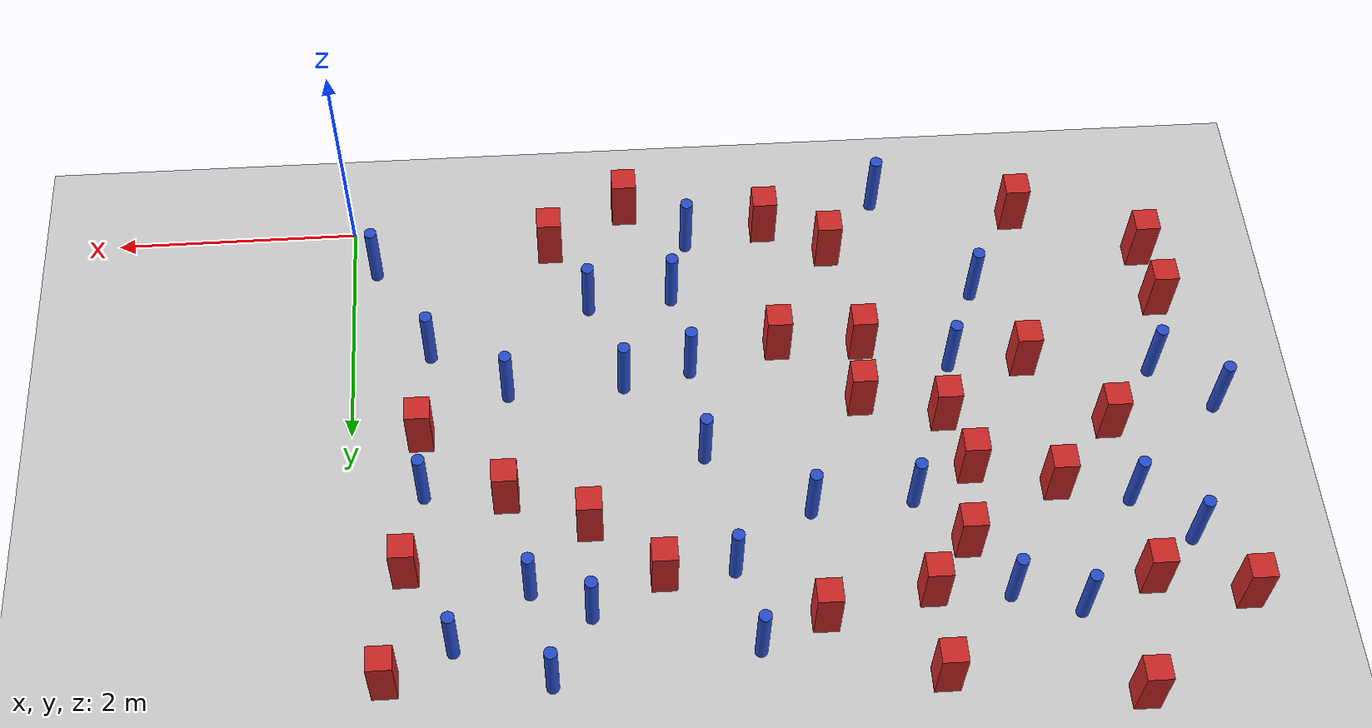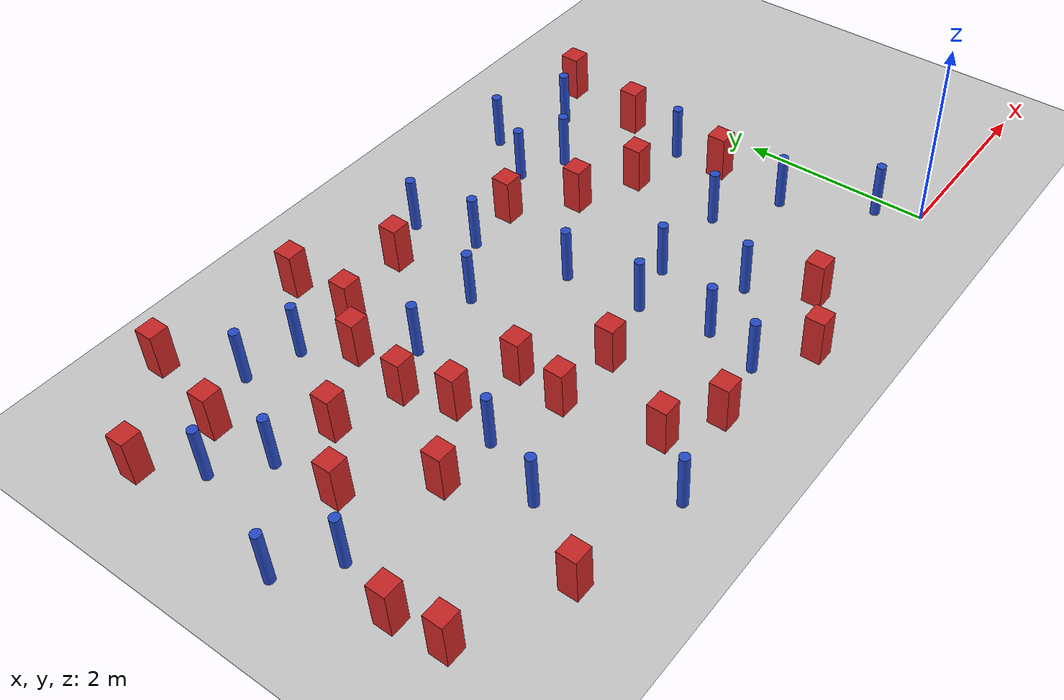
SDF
<sdf version="1.6">
 <world name="default">
  <model name="ground_plane">
   <static>1</static>
   <link name="link">
    <collision name="collision">
     <geometry><plane><normal>0 0 1</normal><size>100 100</size></plane></geometry>
     <surface><friction><ode><mu>100</mu><mu2>50</mu2></ode></friction></surface>
    </collision>
    <visual name="visual">
     <cast_shadows>0</cast_shadows>
     <geometry><plane><normal>0 0 1</normal><size>100 100</size></plane></geometry>
     <material>
      <ambient>1.0 1.0 1.0 1.0</ambient>
      <diffuse>0.8 0.8 0.8 1.0</diffuse>
      <specular>0.01 0.01 0.01 1.000000</specular>
     </material>
    </visual>
   </link>
  </model>
  <model name="NamedLocations">
   <static>true</static>
   <link name="DefaultStart"><pose>8.5 0 0 0 0 3.14</pose></link>
  </model>
  <model name="pole_obstacle3">
   <static>true</static>
   <pose>-6.52083156453 3.32659429473 -9.47619616065e-06 5.49618799738e-07 2.36310414051e-07 -1.55090534805e-07</pose>
   <link name="link">
    <pose>0 0 0.3 0 -0 0</pose>
    <inertial>
     <mass>1</mass>
     <inertia><ixx>0.145833</ixx><ixy>0</ixy><ixz>0</ixz><iyy>0.145833</iyy><iyz>0</iyz><izz>0.125</izz></inertia>
    </inertial>
    <collision name="collision">
     <geometry><cylinder><radius>0.05</radius><length>.6</length></cylinder></geometry>
    </collision>
    <visual name="visual">
     <geometry><cylinder><radius>0.05</radius><length>.6</length></cylinder></geometry>
     <material>
      <script><name>Gazebo/Blue</name><uri>file://media/materials/scripts/gazebo.material</uri></script>
     </material>
    </visual>
   </link>
  </model>
  <model name="pole_obstacle16">
   <static>true</static>
   <pose>-5.04046134124 3.73321766316 -9.47619616065e-06 5.49618799738e-07 2.36310414051e-07 -1.55090534805e-07</pose>
   <link name="link">
    <pose>0 0 0.3 0 -0 0</pose>
    <inertial>
     <mass>1</mass>
     <inertia><ixx>0.145833</ixx><ixy>0</ixy><ixz>0</ixz><iyy>0.145833</iyy><iyz>0</iyz><izz>0.125</izz></inertia>
    </inertial>
    <collision name="collision">
     <geometry><cylinder><radius>0.05</radius><length>.6</length></cylinder></geometry>
    </collision>
    <visual name="visual">
     <geometry><cylinder><radius>0.05</radius><length>.6</length></cylinder></geometry>
     <material>
      <script><name>Gazebo/Blue</name><uri>file://media/materials/scripts/gazebo.material</uri></script>
     </material>
    </visual>
   </link>
  </model>
  <model name="pole_obstacle19">
   <static>true</static>
   <pose>-2.64137848218 0.83292740223 -9.47619616065e-06 5.49618799738e-07 2.36310414075e-07 -1.55090534793e-07</pose>
   <link name="link">
    <pose>0 0 0.3 0 -0 0</pose>
    <inertial>
     <mass>1</mass>
     <inertia><ixx>0.145833</ixx><ixy>0</ixy><ixz>0</ixz><iyy>0.145833</iyy><iyz>0</iyz><izz>0.125</izz></inertia>
    </inertial>
    <collision name="collision">
     <geometry><cylinder><radius>0.05</radius><length>.6</length></cylinder></geometry>
    </collision>
    <visual name="visual">
     <geometry><cylinder><radius>0.05</radius><length>.6</length></cylinder></geometry>
     <material>
      <script><name>Gazebo/Blue</name><uri>file://media/materials/scripts/gazebo.material</uri></script>
     </material>
    </visual>
   </link>
  </model>
  <model name="pole_obstacle27">
   <static>true</static>
   <pose>-4.85621275149 1.62470002069 -9.47619616065e-06 5.49618799738e-07 2.36310414071e-07 -1.55090534796e-07</pose>
   <link name="link">
    <pose>0 0 0.3 0 -0 0</pose>
    <inertial>
     <mass>1</mass>
     <inertia><ixx>0.145833</ixx><ixy>0</ixy><ixz>0</ixz><iyy>0.145833</iyy><iyz>0</iyz><izz>0.125</izz></inertia>
    </inertial>
    <collision name="collision">
     <geometry><cylinder><radius>0.05</radius><length>.6</length></cylinder></geometry>
    </collision>
    <visual name="visual">
     <geometry><cylinder><radius>0.05</radius><length>.6</length></cylinder></geometry>
     <material>
      <script><name>Gazebo/Blue</name><uri>file://media/materials/scripts/gazebo.material</uri></script>
     </material>
    </visual>
   </link>
  </model>
  <model name="square_post_obstacle33">
   <static>true</static>
   <pose>-4.44560535248 4.38843733939 -6.11067671241e-07 -5.50515727128e-06 -8.79689657224e-07 2.37013304536e-05</pose>
   <link name="link">
    <pose>0 0 0.25 0 -0 0</pose>
    <inertial>
     <mass>100</mass>
     <inertia>
      <ixx>0.166667</ixx>
      <ixy>0</ixy>
      <ixz>0</ixz>
      <iyy>0.166667</iyy>
      <iyz>0</iyz>
      <izz>0.166667</izz>
     </inertia>
    </inertial>
    <collision name="collision"><geometry><box><size>.2 .2 .5</size></box></geometry></collision>
    <visual name="visual">
     <geometry><box><size>.2 .2 .5</size></box></geometry>
     <material>
      <script><name>Gazebo/Red</name><uri>file://media/materials/scripts/gazebo.material</uri></script>
     </material>
    </visual>
   </link>
  </model>
  <model name="square_post_obstacle37">
   <static>true</static>
   <pose>-5.53269574983 2.81317121774 -6.11067671241e-07 -5.50515727128e-06 -8.79689657224e-07 2.37013304536e-05</pose>
   <link name="link">
    <pose>0 0 0.25 0 -0 0</pose>
    <inertial>
     <mass>100</mass>
     <inertia>
      <ixx>0.166667</ixx>
      <ixy>0</ixy>
      <ixz>0</ixz>
      <iyy>0.166667</iyy>
      <iyz>0</iyz>
      <izz>0.166667</izz>
     </inertia>
    </inertial>
    <collision name="collision"><geometry><box><size>.2 .2 .5</size></box></geometry></collision>
    <visual name="visual">
     <geometry><box><size>.2 .2 .5</size></box></geometry>
     <material>
      <script><name>Gazebo/Red</name><uri>file://media/materials/scripts/gazebo.material</uri></script>
     </material>
    </visual>
   </link>
  </model>
  <model name="pole_obstacle42">
   <static>true</static>
   <pose>-2.20080716292 1.67959517001 -9.47619616065e-06 5.49618799737e-07 2.36310414072e-07 -1.55090534793e-07</pose>
   <link name="link">
    <pose>0 0 0.3 0 -0 0</pose>
    <inertial>
     <mass>1</mass>
     <inertia><ixx>0.145833</ixx><ixy>0</ixy><ixz>0</ixz><iyy>0.145833</iyy><iyz>0</iyz><izz>0.125</izz></inertia>
    </inertial>
    <collision name="collision">
     <geometry><cylinder><radius>0.05</radius><length>.6</length></cylinder></geometry>
    </collision>
    <visual name="visual">
     <geometry><cylinder><radius>0.05</radius><length>.6</length></cylinder></geometry>
     <material>
      <script><name>Gazebo/Blue</name><uri>file://media/materials/scripts/gazebo.material</uri></script>
     </material>
    </visual>
   </link>
  </model>
  <model name="square_post_obstacle43">
   <static>true</static>
   <pose>-3.97600277825 0.444038101958 -6.11067671241e-07 -5.50515727128e-06 -8.79689657224e-07 2.37013304536e-05</pose>
   <link name="link">
    <pose>0 0 0.25 0 -0 0</pose>
    <inertial>
     <mass>100</mass>
     <inertia>
      <ixx>0.166667</ixx>
      <ixy>0</ixy>
      <ixz>0</ixz>
      <iyy>0.166667</iyy>
      <iyz>0</iyz>
      <izz>0.166667</izz>
     </inertia>
    </inertial>
    <collision name="collision"><geometry><box><size>.2 .2 .5</size></box></geometry></collision>
    <visual name="visual">
     <geometry><box><size>.2 .2 .5</size></box></geometry>
     <material>
      <script><name>Gazebo/Red</name><uri>file://media/materials/scripts/gazebo.material</uri></script>
     </material>
    </visual>
   </link>
  </model>
  <model name="square_post_obstacle45">
   <static>true</static>
   <pose>-6.65425649098 1.1047948728 -6.11067671241e-07 -5.50515727128e-06 -8.79689657224e-07 2.37013304536e-05</pose>
   <link name="link">
    <pose>0 0 0.25 0 -0 0</pose>
    <inertial>
     <mass>100</mass>
     <inertia>
      <ixx>0.166667</ixx>
      <ixy>0</ixy>
      <ixz>0</ixz>
      <iyy>0.166667</iyy>
      <iyz>0</iyz>
      <izz>0.166667</izz>
     </inertia>
    </inertial>
    <collision name="collision"><geometry><box><size>.2 .2 .5</size></box></geometry></collision>
    <visual name="visual">
     <geometry><box><size>.2 .2 .5</size></box></geometry>
     <material>
      <script><name>Gazebo/Red</name><uri>file://media/materials/scripts/gazebo.material</uri></script>
     </material>
    </visual>
   </link>
  </model>
  <model name="square_post_obstacle48">
   <static>true</static>
   <pose>-3.46093252186 0.158511732572 -6.11067671241e-07 -5.50515727128e-06 -8.79689657224e-07 2.37013304536e-05</pose>
   <link name="link">
    <pose>0 0 0.25 0 -0 0</pose>
    <inertial>
     <mass>100</mass>
     <inertia>
      <ixx>0.166667</ixx>
      <ixy>0</ixy>
      <ixz>0</ixz>
      <iyy>0.166667</iyy>
      <iyz>0</iyz>
      <izz>0.166667</izz>
     </inertia>
    </inertial>
    <collision name="collision"><geometry><box><size>.2 .2 .5</size></box></geometry></collision>
    <visual name="visual">
     <geometry><box><size>.2 .2 .5</size></box></geometry>
     <material>
      <script><name>Gazebo/Red</name><uri>file://media/materials/scripts/gazebo.material</uri></script>
     </material>
    </visual>
   </link>
  </model>
  <model name="square_post_obstacle59">
   <static>true</static>
   <pose>-5.59028756532 0.147216902127 -6.11067671241e-07 -5.50515727128e-06 -8.79689657224e-07 2.37013304536e-05</pose>
   <link name="link">
    <pose>0 0 0.25 0 -0 0</pose>
    <inertial>
     <mass>100</mass>
     <inertia>
      <ixx>0.166667</ixx>
      <ixy>0</ixy>
      <ixz>0</ixz>
      <iyy>0.166667</iyy>
      <iyz>0</iyz>
      <izz>0.166667</izz>
     </inertia>
    </inertial>
    <collision name="collision"><geometry><box><size>.2 .2 .5</size></box></geometry></collision>
    <visual name="visual">
     <geometry><box><size>.2 .2 .5</size></box></geometry>
     <material>
      <script><name>Gazebo/Red</name><uri>file://media/materials/scripts/gazebo.material</uri></script>
     </material>
    </visual>
   </link>
  </model>
  <model name="square_post_obstacle60">
   <static>true</static>
   <pose>-1.65208909782 0.275948073349 -6.11067671241e-07 -5.50515727128e-06 -8.79689657224e-07 2.37013304536e-05</pose>
   <link name="link">
    <pose>0 0 0.25 0 -0 0</pose>
    <inertial>
     <mass>100</mass>
     <inertia>
      <ixx>0.166667</ixx>
      <ixy>0</ixy>
      <ixz>0</ixz>
      <iyy>0.166667</iyy>
      <iyz>0</iyz>
      <izz>0.166667</izz>
     </inertia>
    </inertial>
    <collision name="collision"><geometry><box><size>.2 .2 .5</size></box></geometry></collision>
    <visual name="visual">
     <geometry><box><size>.2 .2 .5</size></box></geometry>
     <material>
      <script><name>Gazebo/Red</name><uri>file://media/materials/scripts/gazebo.material</uri></script>
     </material>
    </visual>
   </link>
  </model>
  <model name="pole_obstacle75">
   <static>true</static>
   <pose>-1.52729499665 4.28776093876 -9.47619616065e-06 5.49618799737e-07 2.36310414061e-07 -1.550905348e-07</pose>
   <link name="link">
    <pose>0 0 0.3 0 -0 0</pose>
    <inertial>
     <mass>1</mass>
     <inertia><ixx>0.145833</ixx><ixy>0</ixy><ixz>0</ixz><iyy>0.145833</iyy><iyz>0</iyz><izz>0.125</izz></inertia>
    </inertial>
    <collision name="collision">
     <geometry><cylinder><radius>0.05</radius><length>.6</length></cylinder></geometry>
    </collision>
    <visual name="visual">
     <geometry><cylinder><radius>0.05</radius><length>.6</length></cylinder></geometry>
     <material>
      <script><name>Gazebo/Blue</name><uri>file://media/materials/scripts/gazebo.material</uri></script>
     </material>
    </visual>
   </link>
  </model>
  <model name="pole_obstacle80">
   <static>true</static>
   <pose>-4.42188608262 -0.0715404142047 -9.47619616065e-06 5.49618799737e-07 2.36310414078e-07 -1.55090534791e-07</pose>
   <link name="link">
    <pose>0 0 0.3 0 -0 0</pose>
    <inertial>
     <mass>1</mass>
     <inertia><ixx>0.145833</ixx><ixy>0</ixy><ixz>0</ixz><iyy>0.145833</iyy><iyz>0</iyz><izz>0.125</izz></inertia>
    </inertial>
    <collision name="collision">
     <geometry><cylinder><radius>0.05</radius><length>.6</length></cylinder></geometry>
    </collision>
    <visual name="visual">
     <geometry><cylinder><radius>0.05</radius><length>.6</length></cylinder></geometry>
     <material>
      <script><name>Gazebo/Blue</name><uri>file://media/materials/scripts/gazebo.material</uri></script>
     </material>
    </visual>
   </link>
  </model>
  <model name="pole_obstacle88">
   <static>true</static>
   <pose>-0.190642584882 0.428466157188 -9.47619616065e-06 5.49618799737e-07 2.36310414059e-07 -1.550905348e-07</pose>
   <link name="link">
    <pose>0 0 0.3 0 -0 0</pose>
    <inertial>
     <mass>1</mass>
     <inertia><ixx>0.145833</ixx><ixy>0</ixy><ixz>0</ixz><iyy>0.145833</iyy><iyz>0</iyz><izz>0.125</izz></inertia>
    </inertial>
    <collision name="collision">
     <geometry><cylinder><radius>0.05</radius><length>.6</length></cylinder></geometry>
    </collision>
    <visual name="visual">
     <geometry><cylinder><radius>0.05</radius><length>.6</length></cylinder></geometry>
     <material>
      <script><name>Gazebo/Blue</name><uri>file://media/materials/scripts/gazebo.material</uri></script>
     </material>
    </visual>
   </link>
  </model>
  <model name="square_post_obstacle87">
   <static>true</static>
   <pose>-1.22347058117 2.68554866725 -6.11067671241e-07 -5.50515727128e-06 -8.79689657224e-07 2.37013304536e-05</pose>
   <link name="link">
    <pose>0 0 0.25 0 -0 0</pose>
    <inertial>
     <mass>100</mass>
     <inertia>
      <ixx>0.166667</ixx>
      <ixy>0</ixy>
      <ixz>0</ixz>
      <iyy>0.166667</iyy>
      <iyz>0</iyz>
      <izz>0.166667</izz>
     </inertia>
    </inertial>
    <collision name="collision"><geometry><box><size>.2 .2 .5</size></box></geometry></collision>
    <visual name="visual">
     <geometry><box><size>.2 .2 .5</size></box></geometry>
     <material>
      <script><name>Gazebo/Red</name><uri>file://media/materials/scripts/gazebo.material</uri></script>
     </material>
    </visual>
   </link>
  </model>
  <model name="pole_obstacle98">
   <static>true</static>
   <pose>-3.59554759134 2.92509727946 -9.47619616065e-06 5.49618799737e-07 2.36310414067e-07 -1.55090534797e-07</pose>
   <link name="link">
    <pose>0 0 0.3 0 -0 0</pose>
    <inertial>
     <mass>1</mass>
     <inertia><ixx>0.145833</ixx><ixy>0</ixy><ixz>0</ixz><iyy>0.145833</iyy><iyz>0</iyz><izz>0.125</izz></inertia>
    </inertial>
    <collision name="collision">
     <geometry><cylinder><radius>0.05</radius><length>.6</length></cylinder></geometry>
    </collision>
    <visual name="visual">
     <geometry><cylinder><radius>0.05</radius><length>.6</length></cylinder></geometry>
     <material>
      <script><name>Gazebo/Blue</name><uri>file://media/materials/scripts/gazebo.material</uri></script>
     </material>
    </visual>
   </link>
  </model>
  <model name="pole_obstacle105">
   <static>true</static>
   <pose>-2.80315883394 2.37814279529 -9.47619616065e-06 5.49618799737e-07 2.36310414051e-07 -1.55090534807e-07</pose>
   <link name="link">
    <pose>0 0 0.3 0 -0 0</pose>
    <inertial>
     <mass>1</mass>
     <inertia><ixx>0.145833</ixx><ixy>0</ixy><ixz>0</ixz><iyy>0.145833</iyy><iyz>0</iyz><izz>0.125</izz></inertia>
    </inertial>
    <collision name="collision">
     <geometry><cylinder><radius>0.05</radius><length>.6</length></cylinder></geometry>
    </collision>
    <visual name="visual">
     <geometry><cylinder><radius>0.05</radius><length>.6</length></cylinder></geometry>
     <material>
      <script><name>Gazebo/Blue</name><uri>file://media/materials/scripts/gazebo.material</uri></script>
     </material>
    </visual>
   </link>
  </model>
  <model name="pole_obstacle106">
   <static>true</static>
   <pose>-2.8002590763 0.276128656648 -9.47619616065e-06 5.49618799738e-07 2.3631041407e-07 -1.55090534796e-07</pose>
   <link name="link">
    <pose>0 0 0.3 0 -0 0</pose>
    <inertial>
     <mass>1</mass>
     <inertia><ixx>0.145833</ixx><ixy>0</ixy><ixz>0</ixz><iyy>0.145833</iyy><iyz>0</iyz><izz>0.125</izz></inertia>
    </inertial>
    <collision name="collision">
     <geometry><cylinder><radius>0.05</radius><length>.6</length></cylinder></geometry>
    </collision>
    <visual name="visual">
     <geometry><cylinder><radius>0.05</radius><length>.6</length></cylinder></geometry>
     <material>
      <script><name>Gazebo/Blue</name><uri>file://media/materials/scripts/gazebo.material</uri></script>
     </material>
    </visual>
   </link>
  </model>
  <model name="pole_obstacle107">
   <static>true</static>
   <pose>-5.13996567258 0.922981209681 -9.47619616065e-06 5.49618799737e-07 2.36310414061e-07 -1.550905348e-07</pose>
   <link name="link">
    <pose>0 0 0.3 0 -0 0</pose>
    <inertial>
     <mass>1</mass>
     <inertia><ixx>0.145833</ixx><ixy>0</ixy><ixz>0</ixz><iyy>0.145833</iyy><iyz>0</iyz><izz>0.125</izz></inertia>
    </inertial>
    <collision name="collision">
     <geometry><cylinder><radius>0.05</radius><length>.6</length></cylinder></geometry>
    </collision>
    <visual name="visual">
     <geometry><cylinder><radius>0.05</radius><length>.6</length></cylinder></geometry>
     <material>
      <script><name>Gazebo/Blue</name><uri>file://media/materials/scripts/gazebo.material</uri></script>
     </material>
    </visual>
   </link>
  </model>
  <model name="square_post_obstacle96">
   <static>true</static>
   <pose>-0.437129650648 3.2954865675 -6.11067671241e-07 -5.50515727128e-06 -8.79689657224e-07 2.37013304536e-05</pose>
   <link name="link">
    <pose>0 0 0.25 0 -0 0</pose>
    <inertial>
     <mass>100</mass>
     <inertia>
      <ixx>0.166667</ixx>
      <ixy>0</ixy>
      <ixz>0</ixz>
      <iyy>0.166667</iyy>
      <iyz>0</iyz>
      <izz>0.166667</izz>
     </inertia>
    </inertial>
    <collision name="collision"><geometry><box><size>.2 .2 .5</size></box></geometry></collision>
    <visual name="visual">
     <geometry><box><size>.2 .2 .5</size></box></geometry>
     <material>
      <script><name>Gazebo/Red</name><uri>file://media/materials/scripts/gazebo.material</uri></script>
     </material>
    </visual>
   </link>
  </model>
  <model name="square_post_obstacle97">
   <static>true</static>
   <pose>-6.12418557009 3.66965467418 -6.11067671241e-07 -5.50515727128e-06 -8.79689657224e-07 2.37013304536e-05</pose>
   <link name="link">
    <pose>0 0 0.25 0 -0 0</pose>
    <inertial>
     <mass>100</mass>
     <inertia>
      <ixx>0.166667</ixx>
      <ixy>0</ixy>
      <ixz>0</ixz>
      <iyy>0.166667</iyy>
      <iyz>0</iyz>
      <izz>0.166667</izz>
     </inertia>
    </inertial>
    <collision name="collision"><geometry><box><size>.2 .2 .5</size></box></geometry></collision>
    <visual name="visual">
     <geometry><box><size>.2 .2 .5</size></box></geometry>
     <material>
      <script><name>Gazebo/Red</name><uri>file://media/materials/scripts/gazebo.material</uri></script>
     </material>
    </visual>
   </link>
  </model>
  <model name="pole_obstacle114">
   <static>true</static>
   <pose>-6.93822654669 2.13661798805 -9.47619616065e-06 5.49618799738e-07 2.36310414051e-07 -1.55090534805e-07</pose>
   <link name="link">
    <pose>0 0 0.3 0 -0 0</pose>
    <inertial>
     <mass>1</mass>
     <inertia><ixx>0.145833</ixx><ixy>0</ixy><ixz>0</ixz><iyy>0.145833</iyy><iyz>0</iyz><izz>0.125</izz></inertia>
    </inertial>
    <collision name="collision">
     <geometry><cylinder><radius>0.05</radius><length>.6</length></cylinder></geometry>
    </collision>
    <visual name="visual">
     <geometry><cylinder><radius>0.05</radius><length>.6</length></cylinder></geometry>
     <material>
      <script><name>Gazebo/Blue</name><uri>file://media/materials/scripts/gazebo.material</uri></script>
     </material>
    </visual>
   </link>
  </model>
  <model name="pole_obstacle118">
   <static>true</static>
   <pose>-2.74543047503 1.56361889762 -9.47619616065e-06 5.49618799737e-07 2.36310414072e-07 -1.55090534793e-07</pose>
   <link name="link">
    <pose>0 0 0.3 0 -0 0</pose>
    <inertial>
     <mass>1</mass>
     <inertia><ixx>0.145833</ixx><ixy>0</ixy><ixz>0</ixz><iyy>0.145833</iyy><iyz>0</iyz><izz>0.125</izz></inertia>
    </inertial>
    <collision name="collision">
     <geometry><cylinder><radius>0.05</radius><length>.6</length></cylinder></geometry>
    </collision>
    <visual name="visual">
     <geometry><cylinder><radius>0.05</radius><length>.6</length></cylinder></geometry>
     <material>
      <script><name>Gazebo/Blue</name><uri>file://media/materials/scripts/gazebo.material</uri></script>
     </material>
    </visual>
   </link>
  </model>
  <model name="pole_obstacle119">
   <static>true</static>
   <pose>-2.96056800132 3.40581982008 -9.47619616065e-06 5.49618799737e-07 2.36310414051e-07 -1.55090534807e-07</pose>
   <link name="link">
    <pose>0 0 0.3 0 -0 0</pose>
    <inertial>
     <mass>1</mass>
     <inertia><ixx>0.145833</ixx><ixy>0</ixy><ixz>0</ixz><iyy>0.145833</iyy><iyz>0</iyz><izz>0.125</izz></inertia>
    </inertial>
    <collision name="collision">
     <geometry><cylinder><radius>0.05</radius><length>.6</length></cylinder></geometry>
    </collision>
    <visual name="visual">
     <geometry><cylinder><radius>0.05</radius><length>.6</length></cylinder></geometry>
     <material>
      <script><name>Gazebo/Blue</name><uri>file://media/materials/scripts/gazebo.material</uri></script>
     </material>
    </visual>
   </link>
  </model>
  <model name="square_post_obstacle112">
   <static>true</static>
   <pose>-5.89469811906 4.61150196622 -6.11067671241e-07 -5.50515727128e-06 -8.79689657224e-07 2.37013304536e-05</pose>
   <link name="link">
    <pose>0 0 0.25 0 -0 0</pose>
    <inertial>
     <mass>100</mass>
     <inertia>
      <ixx>0.166667</ixx>
      <ixy>0</ixy>
      <ixz>0</ixz>
      <iyy>0.166667</iyy>
      <iyz>0</iyz>
      <izz>0.166667</izz>
     </inertia>
    </inertial>
    <collision name="collision"><geometry><box><size>.2 .2 .5</size></box></geometry></collision>
    <visual name="visual">
     <geometry><box><size>.2 .2 .5</size></box></geometry>
     <material>
      <script><name>Gazebo/Red</name><uri>file://media/materials/scripts/gazebo.material</uri></script>
     </material>
    </visual>
   </link>
  </model>
  <model name="square_post_obstacle113">
   <static>true</static>
   <pose>-3.60178780581 3.85209419287 -6.11067671241e-07 -5.50515727128e-06 -8.79689657224e-07 2.37013304536e-05</pose>
   <link name="link">
    <pose>0 0 0.25 0 -0 0</pose>
    <inertial>
     <mass>100</mass>
     <inertia>
      <ixx>0.166667</ixx>
      <ixy>0</ixy>
      <ixz>0</ixz>
      <iyy>0.166667</iyy>
      <iyz>0</iyz>
      <izz>0.166667</izz>
     </inertia>
    </inertial>
    <collision name="collision"><geometry><box><size>.2 .2 .5</size></box></geometry></collision>
    <visual name="visual">
     <geometry><box><size>.2 .2 .5</size></box></geometry>
     <material>
      <script><name>Gazebo/Red</name><uri>file://media/materials/scripts/gazebo.material</uri></script>
     </material>
    </visual>
   </link>
  </model>
  <model name="pole_obstacle130">
   <static>true</static>
   <pose>-3.09744850595 4.08184933698 -9.47619616065e-06 5.49618799738e-07 2.3631041406e-07 -1.55090534801e-07</pose>
   <link name="link">
    <pose>0 0 0.3 0 -0 0</pose>
    <inertial>
     <mass>1</mass>
     <inertia><ixx>0.145833</ixx><ixy>0</ixy><ixz>0</ixz><iyy>0.145833</iyy><iyz>0</iyz><izz>0.125</izz></inertia>
    </inertial>
    <collision name="collision">
     <geometry><cylinder><radius>0.05</radius><length>.6</length></cylinder></geometry>
    </collision>
    <visual name="visual">
     <geometry><cylinder><radius>0.05</radius><length>.6</length></cylinder></geometry>
     <material>
      <script><name>Gazebo/Blue</name><uri>file://media/materials/scripts/gazebo.material</uri></script>
     </material>
    </visual>
   </link>
  </model>
  <model name="square_post_obstacle116">
   <static>true</static>
   <pose>-2.29524221241 -0.095521606992 -6.11067671241e-07 -5.50515727128e-06 -8.79689657224e-07 2.37013304536e-05</pose>
   <link name="link">
    <pose>0 0 0.25 0 -0 0</pose>
    <inertial>
     <mass>100</mass>
     <inertia>
      <ixx>0.166667</ixx>
      <ixy>0</ixy>
      <ixz>0</ixz>
      <iyy>0.166667</iyy>
      <iyz>0</iyz>
      <izz>0.166667</izz>
     </inertia>
    </inertial>
    <collision name="collision"><geometry><box><size>.2 .2 .5</size></box></geometry></collision>
    <visual name="visual">
     <geometry><box><size>.2 .2 .5</size></box></geometry>
     <material>
      <script><name>Gazebo/Red</name><uri>file://media/materials/scripts/gazebo.material</uri></script>
     </material>
    </visual>
   </link>
  </model>
  <model name="square_post_obstacle130">
   <static>true</static>
   <pose>-5.44882685092 1.64100390938 -6.11067671241e-07 -5.50515727128e-06 -8.79689657224e-07 2.37013304536e-05</pose>
   <link name="link">
    <pose>0 0 0.25 0 -0 0</pose>
    <inertial>
     <mass>100</mass>
     <inertia>
      <ixx>0.166667</ixx>
      <ixy>0</ixy>
      <ixz>0</ixz>
      <iyy>0.166667</iyy>
      <iyz>0</iyz>
      <izz>0.166667</izz>
     </inertia>
    </inertial>
    <collision name="collision"><geometry><box><size>.2 .2 .5</size></box></geometry></collision>
    <visual name="visual">
     <geometry><box><size>.2 .2 .5</size></box></geometry>
     <material>
      <script><name>Gazebo/Red</name><uri>file://media/materials/scripts/gazebo.material</uri></script>
     </material>
    </visual>
   </link>
  </model>
  <model name="square_post_obstacle131">
   <static>true</static>
   <pose>-4.15389924065 1.40375847673 -6.11067671241e-07 -5.50515727128e-06 -8.79689657224e-07 2.37013304536e-05</pose>
   <link name="link">
    <pose>0 0 0.25 0 -0 0</pose>
    <inertial>
     <mass>100</mass>
     <inertia>
      <ixx>0.166667</ixx>
      <ixy>0</ixy>
      <ixz>0</ixz>
      <iyy>0.166667</iyy>
      <iyz>0</iyz>
      <izz>0.166667</izz>
     </inertia>
    </inertial>
    <collision name="collision"><geometry><box><size>.2 .2 .5</size></box></geometry></collision>
    <visual name="visual">
     <geometry><box><size>.2 .2 .5</size></box></geometry>
     <material>
      <script><name>Gazebo/Red</name><uri>file://media/materials/scripts/gazebo.material</uri></script>
     </material>
    </visual>
   </link>
  </model>
  <model name="pole_obstacle148">
   <static>true</static>
   <pose>-5.55820459439 3.89756910264 -9.47619616065e-06 5.49618799738e-07 2.36310414051e-07 -1.55090534805e-07</pose>
   <link name="link">
    <pose>0 0 0.3 0 -0 0</pose>
    <inertial>
     <mass>1</mass>
     <inertia><ixx>0.145833</ixx><ixy>0</ixy><ixz>0</ixz><iyy>0.145833</iyy><iyz>0</iyz><izz>0.125</izz></inertia>
    </inertial>
    <collision name="collision">
     <geometry><cylinder><radius>0.05</radius><length>.6</length></cylinder></geometry>
    </collision>
    <visual name="visual">
     <geometry><cylinder><radius>0.05</radius><length>.6</length></cylinder></geometry>
     <material>
      <script><name>Gazebo/Blue</name><uri>file://media/materials/scripts/gazebo.material</uri></script>
     </material>
    </visual>
   </link>
  </model>
  <model name="pole_obstacle150">
   <static>true</static>
   <pose>-0.639341927402 1.29093128614 -9.47619616065e-06 5.49618799738e-07 2.36310414061e-07 -1.55090534801e-07</pose>
   <link name="link">
    <pose>0 0 0.3 0 -0 0</pose>
    <inertial>
     <mass>1</mass>
     <inertia><ixx>0.145833</ixx><ixy>0</ixy><ixz>0</ixz><iyy>0.145833</iyy><iyz>0</iyz><izz>0.125</izz></inertia>
    </inertial>
    <collision name="collision">
     <geometry><cylinder><radius>0.05</radius><length>.6</length></cylinder></geometry>
    </collision>
    <visual name="visual">
     <geometry><cylinder><radius>0.05</radius><length>.6</length></cylinder></geometry>
     <material>
      <script><name>Gazebo/Blue</name><uri>file://media/materials/scripts/gazebo.material</uri></script>
     </material>
    </visual>
   </link>
  </model>
  <model name="square_post_obstacle142">
   <static>true</static>
   <pose>-0.28353087412 4.2088083712 -6.11067671241e-07 -5.50515727128e-06 -8.79689657224e-07 2.37013304536e-05</pose>
   <link name="link">
    <pose>0 0 0.25 0 -0 0</pose>
    <inertial>
     <mass>100</mass>
     <inertia>
      <ixx>0.166667</ixx>
      <ixy>0</ixy>
      <ixz>0</ixz>
      <iyy>0.166667</iyy>
      <iyz>0</iyz>
      <izz>0.166667</izz>
     </inertia>
    </inertial>
    <collision name="collision"><geometry><box><size>.2 .2 .5</size></box></geometry></collision>
    <visual name="visual">
     <geometry><box><size>.2 .2 .5</size></box></geometry>
     <material>
      <script><name>Gazebo/Red</name><uri>file://media/materials/scripts/gazebo.material</uri></script>
     </material>
    </visual>
   </link>
  </model>
  <model name="square_post_obstacle159">
   <static>true</static>
   <pose>-4.43953409847 3.68672747625 -6.11067671241e-07 -5.50515727128e-06 -8.79689657224e-07 2.37013304536e-05</pose>
   <link name="link">
    <pose>0 0 0.25 0 -0 0</pose>
    <inertial>
     <mass>100</mass>
     <inertia>
      <ixx>0.166667</ixx>
      <ixy>0</ixy>
      <ixz>0</ixz>
      <iyy>0.166667</iyy>
      <iyz>0</iyz>
      <izz>0.166667</izz>
     </inertia>
    </inertial>
    <collision name="collision"><geometry><box><size>.2 .2 .5</size></box></geometry></collision>
    <visual name="visual">
     <geometry><box><size>.2 .2 .5</size></box></geometry>
     <material>
      <script><name>Gazebo/Red</name><uri>file://media/materials/scripts/gazebo.material</uri></script>
     </material>
    </visual>
   </link>
  </model>
  <model name="pole_obstacle167">
   <static>true</static>
   <pose>-1.95100750619 0.890148627228 -9.47619616065e-06 5.49618799737e-07 2.36310414051e-07 -1.55090534807e-07</pose>
   <link name="link">
    <pose>0 0 0.3 0 -0 0</pose>
    <inertial>
     <mass>1</mass>
     <inertia><ixx>0.145833</ixx><ixy>0</ixy><ixz>0</ixz><iyy>0.145833</iyy><iyz>0</iyz><izz>0.125</izz></inertia>
    </inertial>
    <collision name="collision">
     <geometry><cylinder><radius>0.05</radius><length>.6</length></cylinder></geometry>
    </collision>
    <visual name="visual">
     <geometry><cylinder><radius>0.05</radius><length>.6</length></cylinder></geometry>
     <material>
      <script><name>Gazebo/Blue</name><uri>file://media/materials/scripts/gazebo.material</uri></script>
     </material>
    </visual>
   </link>
  </model>
  <model name="square_post_obstacle160">
   <static>true</static>
   <pose>-4.73631054245 2.12663027981 -6.11067671241e-07 -5.50515727128e-06 -8.79689657224e-07 2.37013304536e-05</pose>
   <link name="link">
    <pose>0 0 0.25 0 -0 0</pose>
    <inertial>
     <mass>100</mass>
     <inertia>
      <ixx>0.166667</ixx>
      <ixy>0</ixy>
      <ixz>0</ixz>
      <iyy>0.166667</iyy>
      <iyz>0</iyz>
      <izz>0.166667</izz>
     </inertia>
    </inertial>
    <collision name="collision"><geometry><box><size>.2 .2 .5</size></box></geometry></collision>
    <visual name="visual">
     <geometry><box><size>.2 .2 .5</size></box></geometry>
     <material>
      <script><name>Gazebo/Red</name><uri>file://media/materials/scripts/gazebo.material</uri></script>
     </material>
    </visual>
   </link>
  </model>
  <model name="pole_obstacle169">
   <static>true</static>
   <pose>-1.2608492378 1.70807075589 -9.47619616065e-06 5.49618799737e-07 2.36310414065e-07 -1.55090534798e-07</pose>
   <link name="link">
    <pose>0 0 0.3 0 -0 0</pose>
    <inertial>
     <mass>1</mass>
     <inertia><ixx>0.145833</ixx><ixy>0</ixy><ixz>0</ixz><iyy>0.145833</iyy><iyz>0</iyz><izz>0.125</izz></inertia>
    </inertial>
    <collision name="collision">
     <geometry><cylinder><radius>0.05</radius><length>.6</length></cylinder></geometry>
    </collision>
    <visual name="visual">
     <geometry><cylinder><radius>0.05</radius><length>.6</length></cylinder></geometry>
     <material>
      <script><name>Gazebo/Blue</name><uri>file://media/materials/scripts/gazebo.material</uri></script>
     </material>
    </visual>
   </link>
  </model>
  <model name="pole_obstacle170">
   <static>true</static>
   <pose>-1.38617091037 3.50983020524 -9.47619616065e-06 5.49618799737e-07 2.36310414062e-07 -1.55090534798e-07</pose>
   <link name="link">
    <pose>0 0 0.3 0 -0 0</pose>
    <inertial>
     <mass>1</mass>
     <inertia><ixx>0.145833</ixx><ixy>0</ixy><ixz>0</ixz><iyy>0.145833</iyy><iyz>0</iyz><izz>0.125</izz></inertia>
    </inertial>
    <collision name="collision">
     <geometry><cylinder><radius>0.05</radius><length>.6</length></cylinder></geometry>
    </collision>
    <visual name="visual">
     <geometry><cylinder><radius>0.05</radius><length>.6</length></cylinder></geometry>
     <material>
      <script><name>Gazebo/Blue</name><uri>file://media/materials/scripts/gazebo.material</uri></script>
     </material>
    </visual>
   </link>
  </model>
  <model name="square_post_obstacle162">
   <static>true</static>
   <pose>-4.76146781028 3.28111418826 -6.11067671241e-07 -5.50515727128e-06 -8.79689657224e-07 2.37013304536e-05</pose>
   <link name="link">
    <pose>0 0 0.25 0 -0 0</pose>
    <inertial>
     <mass>100</mass>
     <inertia>
      <ixx>0.166667</ixx>
      <ixy>0</ixy>
      <ixz>0</ixz>
      <iyy>0.166667</iyy>
      <iyz>0</iyz>
      <izz>0.166667</izz>
     </inertia>
    </inertial>
    <collision name="collision"><geometry><box><size>.2 .2 .5</size></box></geometry></collision>
    <visual name="visual">
     <geometry><box><size>.2 .2 .5</size></box></geometry>
     <material>
      <script><name>Gazebo/Red</name><uri>file://media/materials/scripts/gazebo.material</uri></script>
     </material>
    </visual>
   </link>
  </model>
  <model name="square_post_obstacle164">
   <static>true</static>
   <pose>-6.60169608632 0.587701504267 -6.11067671241e-07 -5.50515727128e-06 -8.79689657224e-07 2.37013304536e-05</pose>
   <link name="link">
    <pose>0 0 0.25 0 -0 0</pose>
    <inertial>
     <mass>100</mass>
     <inertia>
      <ixx>0.166667</ixx>
      <ixy>0</ixy>
      <ixz>0</ixz>
      <iyy>0.166667</iyy>
      <iyz>0</iyz>
      <izz>0.166667</izz>
     </inertia>
    </inertial>
    <collision name="collision"><geometry><box><size>.2 .2 .5</size></box></geometry></collision>
    <visual name="visual">
     <geometry><box><size>.2 .2 .5</size></box></geometry>
     <material>
      <script><name>Gazebo/Red</name><uri>file://media/materials/scripts/gazebo.material</uri></script>
     </material>
    </visual>
   </link>
  </model>
  <model name="pole_obstacle178">
   <static>true</static>
   <pose>-0.792113559571 3.96106690384 -9.47619616065e-06 5.49618799737e-07 2.36310414065e-07 -1.55090534797e-07</pose>
   <link name="link">
    <pose>0 0 0.3 0 -0 0</pose>
    <inertial>
     <mass>1</mass>
     <inertia><ixx>0.145833</ixx><ixy>0</ixy><ixz>0</ixz><iyy>0.145833</iyy><iyz>0</iyz><izz>0.125</izz></inertia>
    </inertial>
    <collision name="collision">
     <geometry><cylinder><radius>0.05</radius><length>.6</length></cylinder></geometry>
    </collision>
    <visual name="visual">
     <geometry><cylinder><radius>0.05</radius><length>.6</length></cylinder></geometry>
     <material>
      <script><name>Gazebo/Blue</name><uri>file://media/materials/scripts/gazebo.material</uri></script>
     </material>
    </visual>
   </link>
  </model>
  <model name="square_post_obstacle170">
   <static>true</static>
   <pose>-6.04599114703 2.27276794261 -6.11067671241e-07 -5.50515727128e-06 -8.79689657224e-07 2.37013304536e-05</pose>
   <link name="link">
    <pose>0 0 0.25 0 -0 0</pose>
    <inertial>
     <mass>100</mass>
     <inertia>
      <ixx>0.166667</ixx>
      <ixy>0</ixy>
      <ixz>0</ixz>
      <iyy>0.166667</iyy>
      <iyz>0</iyz>
      <izz>0.166667</izz>
     </inertia>
    </inertial>
    <collision name="collision"><geometry><box><size>.2 .2 .5</size></box></geometry></collision>
    <visual name="visual">
     <geometry><box><size>.2 .2 .5</size></box></geometry>
     <material>
      <script><name>Gazebo/Red</name><uri>file://media/materials/scripts/gazebo.material</uri></script>
     </material>
    </visual>
   </link>
  </model>
  <model name="square_post_obstacle173">
   <static>true</static>
   <pose>-3.4707321868 1.36877916302 -6.11067671241e-07 -5.50515727128e-06 -8.79689657224e-07 2.37013304536e-05</pose>
   <link name="link">
    <pose>0 0 0.25 0 -0 0</pose>
    <inertial>
     <mass>100</mass>
     <inertia>
      <ixx>0.166667</ixx>
      <ixy>0</ixy>
      <ixz>0</ixz>
      <iyy>0.166667</iyy>
      <iyz>0</iyz>
      <izz>0.166667</izz>
     </inertia>
    </inertial>
    <collision name="collision"><geometry><box><size>.2 .2 .5</size></box></geometry></collision>
    <visual name="visual">
     <geometry><box><size>.2 .2 .5</size></box></geometry>
     <material>
      <script><name>Gazebo/Red</name><uri>file://media/materials/scripts/gazebo.material</uri></script>
     </material>
    </visual>
   </link>
  </model>
  <model name="square_post_obstacle178">
   <static>true</static>
   <pose>-1.86253867657 2.97066986958 -6.11067671241e-07 -5.50515727128e-06 -8.79689657224e-07 2.37013304536e-05</pose>
   <link name="link">
    <pose>0 0 0.25 0 -0 0</pose>
    <inertial>
     <mass>100</mass>
     <inertia>
      <ixx>0.166667</ixx>
      <ixy>0</ixy>
      <ixz>0</ixz>
      <iyy>0.166667</iyy>
      <iyz>0</iyz>
      <izz>0.166667</izz>
     </inertia>
    </inertial>
    <collision name="collision"><geometry><box><size>.2 .2 .5</size></box></geometry></collision>
    <visual name="visual">
     <geometry><box><size>.2 .2 .5</size></box></geometry>
     <material>
      <script><name>Gazebo/Red</name><uri>file://media/materials/scripts/gazebo.material</uri></script>
     </material>
    </visual>
   </link>
  </model>
  <model name="square_post_obstacle180">
   <static>true</static>
   <pose>-0.559333571118 2.08348602375 -6.11067671241e-07 -5.50515727128e-06 -8.79689657224e-07 2.37013304536e-05</pose>
   <link name="link">
    <pose>0 0 0.25 0 -0 0</pose>
    <inertial>
     <mass>100</mass>
     <inertia>
      <ixx>0.166667</ixx>
      <ixy>0</ixy>
      <ixz>0</ixz>
      <iyy>0.166667</iyy>
      <iyz>0</iyz>
      <izz>0.166667</izz>
     </inertia>
    </inertial>
    <collision name="collision"><geometry><box><size>.2 .2 .5</size></box></geometry></collision>
    <visual name="visual">
     <geometry><box><size>.2 .2 .5</size></box></geometry>
     <material>
      <script><name>Gazebo/Red</name><uri>file://media/materials/scripts/gazebo.material</uri></script>
     </material>
    </visual>
   </link>
  </model>
  <model name="square_post_obstacle186">
   <static>true</static>
   <pose>-4.08584193912 1.94439153471 -6.11067671241e-07 -5.50515727128e-06 -8.79689657224e-07 2.37013304536e-05</pose>
   <link name="link">
    <pose>0 0 0.25 0 -0 0</pose>
    <inertial>
     <mass>100</mass>
     <inertia>
      <ixx>0.166667</ixx>
      <ixy>0</ixy>
      <ixz>0</ixz>
      <iyy>0.166667</iyy>
      <iyz>0</iyz>
      <izz>0.166667</izz>
     </inertia>
    </inertial>
    <collision name="collision"><geometry><box><size>.2 .2 .5</size></box></geometry></collision>
    <visual name="visual">
     <geometry><box><size>.2 .2 .5</size></box></geometry>
     <material>
      <script><name>Gazebo/Red</name><uri>file://media/materials/scripts/gazebo.material</uri></script>
     </material>
    </visual>
   </link>
  </model>
  <model name="square_post_obstacle188">
   <static>true</static>
   <pose>-2.40824008466 3.43925709709 -6.11067671241e-07 -5.50515727128e-06 -8.79689657224e-07 2.37013304536e-05</pose>
   <link name="link">
    <pose>0 0 0.25 0 -0 0</pose>
    <inertial>
     <mass>100</mass>
     <inertia>
      <ixx>0.166667</ixx>
      <ixy>0</ixy>
      <ixz>0</ixz>
      <iyy>0.166667</iyy>
      <iyz>0</iyz>
      <izz>0.166667</izz>
     </inertia>
    </inertial>
    <collision name="collision"><geometry><box><size>.2 .2 .5</size></box></geometry></collision>
    <visual name="visual">
     <geometry><box><size>.2 .2 .5</size></box></geometry>
     <material>
      <script><name>Gazebo/Red</name><uri>file://media/materials/scripts/gazebo.material</uri></script>
     </material>
    </visual>
   </link>
  </model>
  <model name="square_post_obstacle199">
   <static>true</static>
   <pose>-4.87693569301 2.62424044263 -6.11067671241e-07 -5.50515727128e-06 -8.79689657224e-07 2.37013304536e-05</pose>
   <link name="link">
    <pose>0 0 0.25 0 -0 0</pose>
    <inertial>
     <mass>100</mass>
     <inertia>
      <ixx>0.166667</ixx>
      <ixy>0</ixy>
      <ixz>0</ixz>
      <iyy>0.166667</iyy>
      <iyz>0</iyz>
      <izz>0.166667</izz>
     </inertia>
    </inertial>
    <collision name="collision"><geometry><box><size>.2 .2 .5</size></box></geometry></collision>
    <visual name="visual">
     <geometry><box><size>.2 .2 .5</size></box></geometry>
     <material>
      <script><name>Gazebo/Red</name><uri>file://media/materials/scripts/gazebo.material</uri></script>
     </material>
    </visual>
   </link>
  </model>
  <model name="pole_obstacle191">
   <static>true</static>
   <pose>-4.40489978156 2.87292160132 -9.47619616065e-06 5.49618799738e-07 2.36310414051e-07 -1.55090534805e-07</pose>
   <link name="link">
    <pose>0 0 0.3 0 -0 0</pose>
    <inertial>
     <mass>1</mass>
     <inertia><ixx>0.145833</ixx><ixy>0</ixy><ixz>0</ixz><iyy>0.145833</iyy><iyz>0</iyz><izz>0.125</izz></inertia>
    </inertial>
    <collision name="collision">
     <geometry><cylinder><radius>0.05</radius><length>.6</length></cylinder></geometry>
    </collision>
    <visual name="visual">
     <geometry><cylinder><radius>0.05</radius><length>.6</length></cylinder></geometry>
     <material>
      <script><name>Gazebo/Blue</name><uri>file://media/materials/scripts/gazebo.material</uri></script>
     </material>
    </visual>
   </link>
  </model>
  <model name="square_post_obstacle206">
   <static>true</static>
   <pose>-6.83425906511 3.83827377387 -6.11067671241e-07 -5.50515727128e-06 -8.79689657224e-07 2.37013304536e-05</pose>
   <link name="link">
    <pose>0 0 0.25 0 -0 0</pose>
    <inertial>
     <mass>100</mass>
     <inertia>
      <ixx>0.166667</ixx>
      <ixy>0</ixy>
      <ixz>0</ixz>
      <iyy>0.166667</iyy>
      <iyz>0</iyz>
      <izz>0.166667</izz>
     </inertia>
    </inertial>
    <collision name="collision"><geometry><box><size>.2 .2 .5</size></box></geometry></collision>
    <visual name="visual">
     <geometry><box><size>.2 .2 .5</size></box></geometry>
     <material>
      <script><name>Gazebo/Red</name><uri>file://media/materials/scripts/gazebo.material</uri></script>
     </material>
    </visual>
   </link>
  </model>
  <model name="pole_obstacle220">
   <static>true</static>
   <pose>-6.10087375786 2.95639537023 -9.47619616065e-06 5.49618799738e-07 2.36310414051e-07 -1.55090534805e-07</pose>
   <link name="link">
    <pose>0 0 0.3 0 -0 0</pose>
    <inertial>
     <mass>1</mass>
     <inertia><ixx>0.145833</ixx><ixy>0</ixy><ixz>0</ixz><iyy>0.145833</iyy><iyz>0</iyz><izz>0.125</izz></inertia>
    </inertial>
    <collision name="collision">
     <geometry><cylinder><radius>0.05</radius><length>.6</length></cylinder></geometry>
    </collision>
    <visual name="visual">
     <geometry><cylinder><radius>0.05</radius><length>.6</length></cylinder></geometry>
     <material>
      <script><name>Gazebo/Blue</name><uri>file://media/materials/scripts/gazebo.material</uri></script>
     </material>
    </visual>
   </link>
  </model>
  <model name="pole_obstacle226">
   <static>true</static>
   <pose>-1.84625786491 3.73492889622 -9.47619616065e-06 5.49618799737e-07 2.36310414062e-07 -1.55090534798e-07</pose>
   <link name="link">
    <pose>0 0 0.3 0 -0 0</pose>
    <inertial>
     <mass>1</mass>
     <inertia><ixx>0.145833</ixx><ixy>0</ixy><ixz>0</ixz><iyy>0.145833</iyy><iyz>0</iyz><izz>0.125</izz></inertia>
    </inertial>
    <collision name="collision">
     <geometry><cylinder><radius>0.05</radius><length>.6</length></cylinder></geometry>
    </collision>
    <visual name="visual">
     <geometry><cylinder><radius>0.05</radius><length>.6</length></cylinder></geometry>
     <material>
      <script><name>Gazebo/Blue</name><uri>file://media/materials/scripts/gazebo.material</uri></script>
     </material>
    </visual>
   </link>
  </model>
  <model name="pole_obstacle229">
   <static>true</static>
   <pose>-6.47943999061 1.76242002078 -9.47619616065e-06 5.49618799738e-07 2.36310414071e-07 -1.55090534796e-07</pose>
   <link name="link">
    <pose>0 0 0.3 0 -0 0</pose>
    <inertial>
     <mass>1</mass>
     <inertia><ixx>0.145833</ixx><ixy>0</ixy><ixz>0</ixz><iyy>0.145833</iyy><iyz>0</iyz><izz>0.125</izz></inertia>
    </inertial>
    <collision name="collision">
     <geometry><cylinder><radius>0.05</radius><length>.6</length></cylinder></geometry>
    </collision>
    <visual name="visual">
     <geometry><cylinder><radius>0.05</radius><length>.6</length></cylinder></geometry>
     <material>
      <script><name>Gazebo/Blue</name><uri>file://media/materials/scripts/gazebo.material</uri></script>
     </material>
    </visual>
   </link>
  </model>
  <model name="pole_obstacle231">
   <static>true</static>
   <pose>-0.578134990611 2.61622002078 -9.47619616065e-06 5.49618799737e-07 2.36310414063e-07 -1.55090534799e-07</pose>
   <link name="link">
    <pose>0 0 0.3 0 -0 0</pose>
    <inertial>
     <mass>1</mass>
     <inertia><ixx>0.145833</ixx><ixy>0</ixy><ixz>0</ixz><iyy>0.145833</iyy><iyz>0</iyz><izz>0.125</izz></inertia>
    </inertial>
    <collision name="collision">
     <geometry><cylinder><radius>0.05</radius><length>.6</length></cylinder></geometry>
    </collision>
    <visual name="visual">
     <geometry><cylinder><radius>0.05</radius><length>.6</length></cylinder></geometry>
     <material>
      <script><name>Gazebo/Blue</name><uri>file://media/materials/scripts/gazebo.material</uri></script>
     </material>
    </visual>
   </link>
  </model>
 </world>
</sdf>
